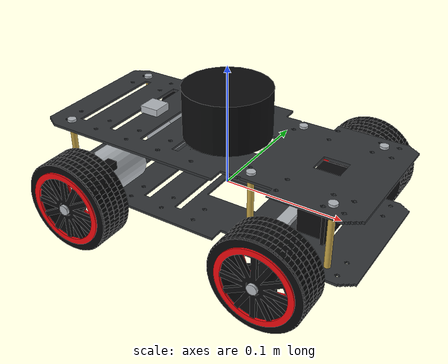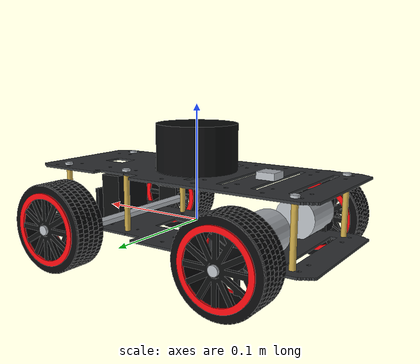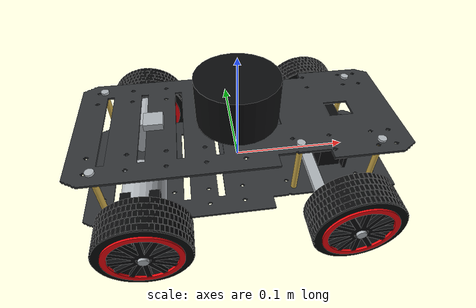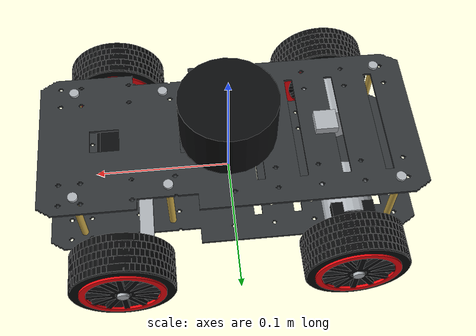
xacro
<?xml version="1.0"?>
<robot xmlns:xacro="http://www.ros.org/wiki/xacro" name="ackermann_car">
  <!-- Đơn vị mét, kg, radian; +X trước, +Y trái, +Z lên; base_link ở giữa hai trục bánh. -->
  <xacro:property name="base_length" value="0.270"/>
  <xacro:property name="base_width" value="0.1205"/>
  <xacro:property name="plate_thickness" value="0.002"/>
  <!-- Tâm tầng trên cao hơn trục bánh 43 mm. -->
  <xacro:property name="upper_deck_z" value="0.043"/>
  <!-- Thông số kích thước và khối lượng bánh xe. -->
  <xacro:property name="wheel_radius" value="0.0375"/>
  <xacro:property name="wheel_width" value="0.030"/>
  <xacro:property name="wheelbase" value="0.165"/>
  <xacro:property name="track_width" value="0.167"/>
  <xacro:property name="wheel_mass" value="0.080"/>
  <xacro:property name="base_mass" value="0.64"/>
  <!-- Lidar 2D: kích thước, khối lượng và tầm đo ước lượng theo loại RPLIDAR A1. -->
  <xacro:property name="lidar_radius" value="0.035"/>
  <xacro:property name="lidar_height" value="0.040"/>
  <xacro:property name="lidar_mass" value="0.170"/>
  <xacro:property name="lidar_range_min" value="0.15"/>
  <xacro:property name="lidar_range_max" value="12.0"/>
  <xacro:property name="palette" value="${dict(chassis='0.20 0.21 0.22 1', black='0.045 0.048 0.052 1', rubber='0.035 0.037 0.040 1', red='0.95 0.035 0.055 1', silver='0.70 0.72 0.74 1', gold='0.78 0.65 0.28 1')}"/>
  <xacro:macro name="paint" params="color">
    <!-- Khai báo màu RGBA trực tiếp để Gazebo giữ đúng màu. -->
    <material name="${color}"><color rgba="${palette[color]}"/></material>
  </xacro:macro>
  <!-- Mẫu tạo hình hộp và hình trụ để hiển thị. -->
  <xacro:macro name="box_visual" params="xyz size material">
    <visual><origin xyz="${xyz}"/><geometry><box size="${size}"/></geometry><xacro:paint color="${material}"/></visual>
  </xacro:macro>
  <xacro:macro name="cylinder_visual" params="xyz radius length material rpy:='0 0 0'">
    <visual><origin xyz="${xyz}" rpy="${rpy}"/><geometry><cylinder radius="${radius}" length="${length}"/></geometry><xacro:paint color="${material}"/></visual>
  </xacro:macro>
  <!-- Thân xe gồm hai tầng, cụm cơ khí và thông số vật lý. -->
  <link name="base_link">
    <inertial><origin xyz="-0.015 0 0.015"/><mass value="${base_mass}"/>
      <inertia ixx="0.0009" ixy="0" ixz="0" iyy="0.0035" iyz="0" izz="0.0041"/>
    </inertial>
    <visual><origin xyz="0 0 -0.009"/><geometry><mesh filename="package://ackermann_description/meshes/chassis_plate.stl"/></geometry><xacro:paint color="chassis"/></visual>
    <visual><origin xyz="0 0 ${upper_deck_z}"/><geometry><mesh filename="package://ackermann_description/meshes/chassis_plate.stl"/></geometry><xacro:paint color="chassis"/></visual>
    <collision name="lower_deck"><origin xyz="0 0 -0.009"/><geometry><box size="${base_length} ${base_width} ${plate_thickness}"/></geometry></collision>
    <collision name="upper_deck"><origin xyz="0 0 ${upper_deck_z}"/><geometry><box size="${base_length} ${base_width} ${plate_thickness}"/></geometry></collision>
    <!-- Servo LD-1501MG kích thước 40 × 20 × 40,5 mm, lắp ngang xe. -->
    <xacro:box_visual xyz="0.083 0 0.013" size="0.020 0.040 0.0405" material="black"/>
    <xacro:box_visual xyz="0.096 0 0.006" size="0.003 0.049 0.028" material="black"/>
    <xacro:box_visual xyz="0.064 0 -0.001" size="0.010 0.130 0.004" material="silver"/>
    <xacro:box_visual xyz="0.082 0 0.031" size="0.008 0.030 0.003" material="silver"/>
    <collision name="servo"><origin xyz="0.083 0 0.013"/><geometry><box size="0.020 0.040 0.0405"/></geometry></collision>
    <!-- Tạo motor và trụ đỡ: s = 1 bên trái, s = -1 bên phải. -->
    <xacro:macro name="hardware_side" params="s">
      <xacro:cylinder_visual xyz="-0.0825 ${s*0.042} 0.008" radius="0.018" length="0.040" rpy="${pi/2} 0 0" material="silver"/>
      <xacro:box_visual xyz="-0.0825 ${s*0.062} 0.008" size="0.030 0.016 0.033" material="black"/>
      <xacro:macro name="post" params="x y">
        <xacro:cylinder_visual xyz="${x} ${y} 0.017" radius="0.0025" length="0.050" material="gold"/>
        <xacro:cylinder_visual xyz="${x} ${y} 0.045" radius="0.0035" length="0.002" material="silver"/>
      </xacro:macro>
      <xacro:post x="0.110" y="${s*0.044}"/>
      <xacro:post x="0.045" y="${s*0.040}"/>
      <xacro:post x="-0.115" y="${s*0.049}"/>
    </xacro:macro>
    <xacro:hardware_side s="1"/><xacro:hardware_side s="-1"/>
  </link>
  <!-- Frame tại tâm trục sau, không có khối lượng. Nav2 dùng frame này làm gốc của xe vì mô hình
       Ackermann (plugin lái, Smac Hybrid-A*, RPP, MPPI) lấy tâm trục sau làm điểm tham chiếu. -->
  <link name="rear_axle"/>
  <joint name="rear_axle_joint" type="fixed">
    <parent link="base_link"/><child link="rear_axle"/>
    <origin xyz="${-wheelbase/2} 0 0"/>
  </joint>
  <!-- Lidar 2D quét 360°, đặt giữa tầng trên; gốc lidar_link là tâm mặt phẳng quét. -->
  <link name="lidar_link">
    <inertial>
      <mass value="${lidar_mass}"/>
      <inertia ixx="${lidar_mass*(3*lidar_radius**2+lidar_height**2)/12}" ixy="0" ixz="0"
               iyy="${lidar_mass*(3*lidar_radius**2+lidar_height**2)/12}" iyz="0"
               izz="${lidar_mass*lidar_radius**2/2}"/>
    </inertial>
    <xacro:cylinder_visual xyz="0 0 0" radius="${lidar_radius}" length="${lidar_height}" material="black"/>
    <collision name="lidar_body">
      <geometry><cylinder radius="${lidar_radius}" length="${lidar_height}"/></geometry>
    </collision>
  </link>
  <joint name="lidar_joint" type="fixed">
    <parent link="base_link"/><child link="lidar_link"/>
    <origin xyz="0 0 ${upper_deck_z+plate_thickness/2+lidar_height/2}"/>
  </joint>
  <!-- GPS mô phỏng gắn phía sau Lidar, trên tầng trên. -->
  <link name="gps_link">
    <inertial>
      <mass value="0.005"/>
      <inertia ixx="0.000000121667" ixy="0" ixz="0"
               iyy="0.000000121667" iyz="0" izz="0.000000213333"/>
    </inertial>
    <xacro:box_visual xyz="0 0 0" size="0.016 0.016 0.006" material="silver"/>
  </link>
  <joint name="gps_joint" type="fixed">
    <parent link="base_link"/><child link="gps_link"/>
    <origin xyz="-0.070 0 ${upper_deck_z+plate_thickness/2+0.003}"/>
  </joint>
  <!-- NavSat dùng plugin riêng trong world; không cần bộ dựng hình của Lidar. -->
  <gazebo reference="gps_link">
    <sensor name="gps" type="navsat">
      <topic>/model/ackermann_car/gps/fix</topic>
      <ignition_frame_id>gps_link</ignition_frame_id>
      <update_rate>5</update_rate>
      <always_on>true</always_on>
      <visualize>false</visualize>
      <!-- Chưa thêm nhiễu để kiểm chứng tọa độ; chưa mô phỏng sai số điện thoại. -->
      <navsat/>
    </sensor>
  </gazebo>
  <!-- Cảm biến chỉ phát dữ liệu khi world có plugin Sensors (xem ackermann_bringup/worlds/nav_world.sdf). -->
  <gazebo reference="lidar_link">
    <sensor name="lidar" type="gpu_lidar">
      <topic>/model/ackermann_car/scan</topic>
      <ignition_frame_id>lidar_link</ignition_frame_id>
      <update_rate>10</update_rate>
      <always_on>true</always_on>
      <visualize>false</visualize>
      <lidar>
        <scan>
          <horizontal>
            <!-- 360 tia cách nhau 1°, từ -180° đến 179° để không trùng tia đầu và tia cuối. -->
            <samples>360</samples><resolution>1</resolution>
            <min_angle>${-pi}</min_angle><max_angle>${pi*179/180}</max_angle>
          </horizontal>
        </scan>
        <!-- Tầm đo nhỏ nhất lớn hơn thân xe nên tia không chạm chính xe. -->
        <range><min>${lidar_range_min}</min><max>${lidar_range_max}</max><resolution>0.01</resolution></range>
        <noise><type>gaussian</type><mean>0.0</mean><stddev>0.01</stddev></noise>
      </lidar>
    </sensor>
  </gazebo>
  <!-- Bánh xe gồm lốp đen, viền đỏ, nan đen và ốc bạc. -->
  <xacro:macro name="wheel_visual" params="color">
    <visual name="wheel_${color}">
      <geometry><mesh filename="package://ackermann_description/meshes/wheel_${color}.stl"/></geometry>
      <xacro:paint color="${color}"/>
    </visual>
  </xacro:macro>
  <!-- Tạo bánh xe với hình va chạm, khối lượng, quán tính và ma sát. -->
  <xacro:macro name="wheel" params="name">
    <link name="${name}_wheel">
      <xacro:wheel_visual color="rubber"/>
      <xacro:wheel_visual color="red"/>
      <xacro:wheel_visual color="black"/>
      <xacro:wheel_visual color="silver"/>
      <collision><origin rpy="${pi/2} 0 0"/><geometry><cylinder radius="${wheel_radius}" length="${wheel_width}"/></geometry></collision>
      <inertial><mass value="${wheel_mass}"/>
        <inertia ixx="${wheel_mass*(3*wheel_radius**2+wheel_width**2)/12}" ixy="0" ixz="0" iyy="${wheel_mass*wheel_radius**2/2}" iyz="0" izz="${wheel_mass*(3*wheel_radius**2+wheel_width**2)/12}"/>
      </inertial>
    </link>
    <gazebo reference="${name}_wheel"><mu1>1.0</mu1><mu2>1.0</mu2></gazebo>
  </xacro:macro>
  <!-- Tạo bánh trước, bánh sau và các khớp cho mỗi bên xe. -->
  <xacro:macro name="axle_side" params="side s">
    <xacro:wheel name="front_${side}"/><xacro:wheel name="rear_${side}"/>
    <link name="front_${side}_steering_link">
      <xacro:box_visual xyz="0 ${-s*0.012} 0" size="0.022 0.014 0.016" material="black"/>
      <inertial><mass value="0.020"/><inertia ixx="0.000002" ixy="0" ixz="0" iyy="0.000002" iyz="0" izz="0.000002"/></inertial>
    </link>
    <!-- Khớp lái quay quanh trục Z, giới hạn ±0,6 radian. -->
    <joint name="front_${side}_steering_joint" type="revolute">
      <parent link="base_link"/><child link="front_${side}_steering_link"/>
      <origin xyz="${wheelbase/2} ${s*track_width/2} 0"/><axis xyz="0 0 1"/>
      <limit lower="-0.6" upper="0.6" effort="1.67" velocity="6.5"/><dynamics damping="0.05" friction="0.01"/>
    </joint>
    <!-- Bánh trước quay tự do quanh trục Y. -->
    <joint name="front_${side}_wheel_joint" type="continuous">
      <parent link="front_${side}_steering_link"/><child link="front_${side}_wheel"/>
      <axis xyz="0 1 0"/><dynamics damping="0.0002" friction="0.0001"/>
    </joint>
    <!-- Bánh sau quay quanh trục Y để truyền động. -->
    <joint name="rear_${side}_wheel_joint" type="continuous">
      <parent link="base_link"/><child link="rear_${side}_wheel"/>
      <origin xyz="${-wheelbase/2} ${s*track_width/2} 0"/><axis xyz="0 1 0"/>
      <dynamics damping="0.0002" friction="0.0001"/>
    </joint>
  </xacro:macro>
  <xacro:axle_side side="left" s="1"/><xacro:axle_side side="right" s="-1"/>
  <!-- Plugin điều khiển hai bánh sau và tính góc lái riêng cho hai bánh trước. -->
  <gazebo>
    <plugin filename="ignition-gazebo-ackermann-steering-system"
            name="ignition::gazebo::systems::AckermannSteering">
      <left_joint>rear_left_wheel_joint</left_joint>
      <right_joint>rear_right_wheel_joint</right_joint>
      <left_steering_joint>front_left_steering_joint</left_steering_joint>
      <right_steering_joint>front_right_steering_joint</right_steering_joint>
      <wheel_separation>${track_width}</wheel_separation>
      <kingpin_width>${track_width}</kingpin_width>
      <wheel_base>${wheelbase}</wheel_base>
      <wheel_radius>${wheel_radius}</wheel_radius>
      <!-- Giới hạn bán kính rẽ để góc bánh trong không vượt quá giới hạn khớp 0,6 rad. -->
      <steering_limit>0.45</steering_limit>
      <min_velocity>-0.5</min_velocity>
      <max_velocity>0.5</max_velocity>
      <min_acceleration>-1.0</min_acceleration>
      <max_acceleration>1.0</max_acceleration>
      <topic>/model/ackermann_car/cmd_vel</topic>
      <odom_topic>/model/ackermann_car/wheel_odometry</odom_topic>
      <tf_topic>/model/ackermann_car/wheel_tf</tf_topic>
      <frame_id>odom</frame_id>
      <child_frame_id>base_link</child_frame_id>
      <odom_publish_frequency>50</odom_publish_frequency>
    </plugin>
    <!-- Lấy vị trí thật trong Gazebo làm phản hồi bám đường, tránh trôi odometry từ bánh xe. -->
    <plugin filename="ignition-gazebo-odometry-publisher-system"
            name="ignition::gazebo::systems::OdometryPublisher">
      <odom_frame>odom</odom_frame>
      <robot_base_frame>base_link</robot_base_frame>
      <odom_topic>/model/ackermann_car/odometry</odom_topic>
      <tf_topic>/model/ackermann_car/tf</tf_topic>
      <odom_publish_frequency>50</odom_publish_frequency>
      <dimensions>3</dimensions>
    </plugin>
    <!-- Xuất vị trí và vận tốc thực của các khớp từ mô phỏng. -->
    <plugin filename="ignition-gazebo-joint-state-publisher-system"
            name="ignition::gazebo::systems::JointStatePublisher">
      <topic>/model/ackermann_car/joint_state</topic>
      <joint_name>front_left_steering_joint</joint_name>
      <joint_name>front_right_steering_joint</joint_name>
      <joint_name>front_left_wheel_joint</joint_name>
      <joint_name>front_right_wheel_joint</joint_name>
      <joint_name>rear_left_wheel_joint</joint_name>
      <joint_name>rear_right_wheel_joint</joint_name>
    </plugin>
  </gazebo>
</robot>
